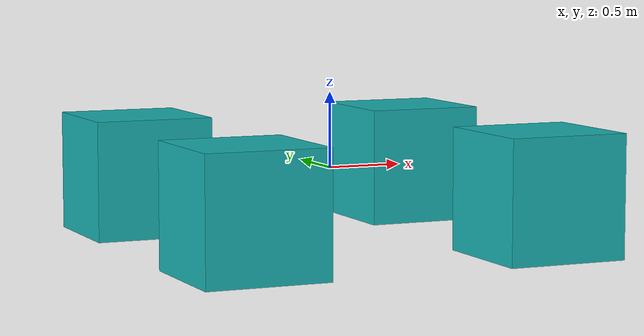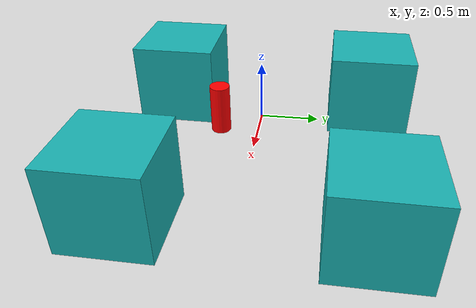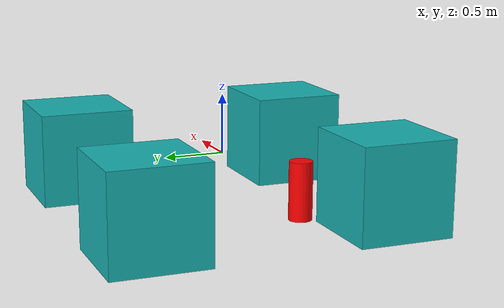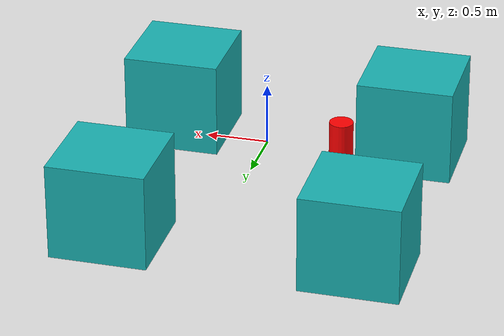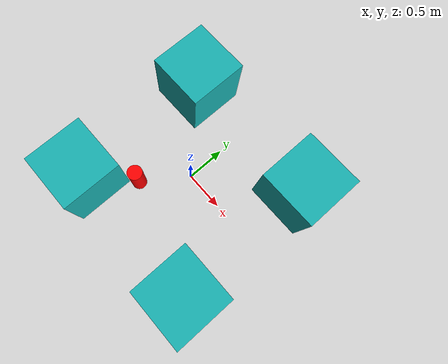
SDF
<?xml version='1.0'?>
<sdf version='1.6'>
  <model name='simple_map_feu'>
    <link name='link_0'>
      <pose frame=''>-1 1 0 0 -0 0</pose>
      <inertial>
        <mass>1</mass>
        <inertia>
          <ixx>0.166667</ixx>
          <ixy>0</ixy>
          <ixz>0</ixz>
          <iyy>0.166667</iyy>
          <iyz>0</iyz>
          <izz>0.166667</izz>
        </inertia>
        <pose frame=''>0 0 0 0 -0 0</pose>
      </inertial>
      <gravity>1</gravity>
      <self_collide>0</self_collide>
      <kinematic>0</kinematic>
      <visual name='visual'>
        <pose frame=''>0 0 -0.1 0 -0 0</pose>
        <geometry>
          <box>
            <size>0.8 0.8 0.8</size>
          </box>
        </geometry>
        <material>
          <lighting>1</lighting>
          <script>
            <uri>file://media/materials/scripts/gazebo.material</uri>
            <name>Gazebo/Grey</name>
          </script>
          <ambient>0.1 0.3 0.7 1</ambient>
          <diffuse>0.1 0.7 0.7 1</diffuse>
          <specular>0.1 0.01 0.7 1</specular>
          <emissive>0.1 0 0.7 1</emissive>
          <shader type='vertex'>
            <normal_map>__default__</normal_map>
          </shader>
        </material>
        <cast_shadows>1</cast_shadows>
        <transparency>0</transparency>
      </visual>
      <collision name='collision'>
        <laser_retro>0</laser_retro>
        <max_contacts>10</max_contacts>
        <pose frame=''>0 0 -0.1 0 -0 0</pose>
        <geometry>
          <box>
            <size>0.8 0.8 0.8</size>
          </box>
        </geometry>
        <surface>
          <friction>
            <ode>
              <mu>1</mu>
              <mu2>1</mu2>
              <fdir1>0 0 0</fdir1>
              <slip1>0</slip1>
              <slip2>0</slip2>
            </ode>
            <torsional>
              <coefficient>1</coefficient>
              <patch_radius>0</patch_radius>
              <surface_radius>0</surface_radius>
              <use_patch_radius>1</use_patch_radius>
              <ode>
                <slip>0</slip>
              </ode>
            </torsional>
          </friction>
          <bounce>
            <restitution_coefficient>0</restitution_coefficient>
            <threshold>1e+06</threshold>
          </bounce>
          <contact>
            <collide_without_contact>0</collide_without_contact>
            <collide_without_contact_bitmask>1</collide_without_contact_bitmask>
            <collide_bitmask>1</collide_bitmask>
            <ode>
              <soft_cfm>0</soft_cfm>
              <soft_erp>0.2</soft_erp>
              <kp>1e+13</kp>
              <kd>1</kd>
              <max_vel>0.01</max_vel>
              <min_depth>0</min_depth>
            </ode>
            <bullet>
              <split_impulse>1</split_impulse>
              <split_impulse_penetration_threshold>-0.01</split_impulse_penetration_threshold>
              <soft_cfm>0</soft_cfm>
              <soft_erp>0.2</soft_erp>
              <kp>1e+13</kp>
              <kd>1</kd>
            </bullet>
          </contact>
        </surface>
      </collision>
    </link>
    <link name='link_0_clone'>
      <pose frame=''>1 1 0 0 -0 0</pose>
      <inertial>
        <mass>1</mass>
        <inertia>
          <ixx>0.166667</ixx>
          <ixy>0</ixy>
          <ixz>0</ixz>
          <iyy>0.166667</iyy>
          <iyz>0</iyz>
          <izz>0.166667</izz>
        </inertia>
        <pose frame=''>0 0 0 0 -0 0</pose>
      </inertial>
      <self_collide>0</self_collide>
      <kinematic>0</kinematic>
      <visual name='visual'>
        <pose frame=''>0 0 -0.1 0 -0 0</pose>
        <geometry>
          <box>
            <size>0.8 0.8 0.8</size>
          </box>
        </geometry>
        <material>
          <lighting>1</lighting>
          <script>
            <uri>file://media/materials/scripts/gazebo.material</uri>
            <name>Gazebo/Grey</name>
          </script>
          <ambient>0.1 0.3 0.7 1</ambient>
          <diffuse>0.1 0.7 0.7 1</diffuse>
          <specular>0.1 0.01 0.7 1</specular>
          <emissive>0.1 0 0.7 1</emissive>
          <shader type='vertex'>
            <normal_map>__default__</normal_map>
          </shader>
        </material>
        <cast_shadows>1</cast_shadows>
        <transparency>0</transparency>
      </visual>
      <collision name='collision'>
        <laser_retro>0</laser_retro>
        <max_contacts>10</max_contacts>
        <pose frame=''>0 0 -0.1 0 -0 0</pose>
        <geometry>
          <box>
            <size>0.8 0.8 0.8</size>
          </box>
        </geometry>
        <surface>
          <friction>
            <ode>
              <mu>1</mu>
              <mu2>1</mu2>
              <fdir1>0 0 0</fdir1>
              <slip1>0</slip1>
              <slip2>0</slip2>
            </ode>
            <torsional>
              <coefficient>1</coefficient>
              <patch_radius>0</patch_radius>
              <surface_radius>0</surface_radius>
              <use_patch_radius>1</use_patch_radius>
              <ode>
                <slip>0</slip>
              </ode>
            </torsional>
          </friction>
          <bounce>
            <restitution_coefficient>0</restitution_coefficient>
            <threshold>1e+06</threshold>
          </bounce>
          <contact>
            <collide_without_contact>0</collide_without_contact>
            <collide_without_contact_bitmask>1</collide_without_contact_bitmask>
            <collide_bitmask>1</collide_bitmask>
            <ode>
              <soft_cfm>0</soft_cfm>
              <soft_erp>0.2</soft_erp>
              <kp>1e+13</kp>
              <kd>1</kd>
              <max_vel>0.01</max_vel>
              <min_depth>0</min_depth>
            </ode>
            <bullet>
              <split_impulse>1</split_impulse>
              <split_impulse_penetration_threshold>-0.01</split_impulse_penetration_threshold>
              <soft_cfm>0</soft_cfm>
              <soft_erp>0.2</soft_erp>
              <kp>1e+13</kp>
              <kd>1</kd>
            </bullet>
          </contact>
        </surface>
      </collision>
    </link>
    <link name='link_0_clone_0'>
      <pose frame=''>1 -1 0 0 -0 0</pose>
      <inertial>
        <mass>1</mass>
        <inertia>
          <ixx>0.166667</ixx>
          <ixy>0</ixy>
          <ixz>0</ixz>
          <iyy>0.166667</iyy>
          <iyz>0</iyz>
          <izz>0.166667</izz>
        </inertia>
        <pose frame=''>0 0 0 0 -0 0</pose>
      </inertial>
      <self_collide>0</self_collide>
      <kinematic>0</kinematic>
      <visual name='visual'>
        <pose frame=''>0 0 -0.1 0 -0 0</pose>
        <geometry>
          <box>
            <size>0.8 0.8 0.8</size>
          </box>
        </geometry>
        <material>
          <lighting>1</lighting>
          <script>
            <uri>file://media/materials/scripts/gazebo.material</uri>
            <name>Gazebo/Grey</name>
          </script>
          <ambient>0.1 0.3 0.7 1</ambient>
          <diffuse>0.1 0.7 0.7 1</diffuse>
          <specular>0.1 0.01 0.7 1</specular>
          <emissive>0.1 0 0.7 1</emissive>
          <shader type='vertex'>
            <normal_map>__default__</normal_map>
          </shader>
        </material>
        <cast_shadows>1</cast_shadows>
        <transparency>0</transparency>
      </visual>
      <collision name='collision'>
        <laser_retro>0</laser_retro>
        <max_contacts>10</max_contacts>
        <pose frame=''>0 0 -0.1 0 -0 0</pose>
        <geometry>
          <box>
            <size>0.8 0.8 0.8</size>
          </box>
        </geometry>
        <surface>
          <friction>
            <ode>
              <mu>1</mu>
              <mu2>1</mu2>
              <fdir1>0 0 0</fdir1>
              <slip1>0</slip1>
              <slip2>0</slip2>
            </ode>
            <torsional>
              <coefficient>1</coefficient>
              <patch_radius>0</patch_radius>
              <surface_radius>0</surface_radius>
              <use_patch_radius>1</use_patch_radius>
              <ode>
                <slip>0</slip>
              </ode>
            </torsional>
          </friction>
          <bounce>
            <restitution_coefficient>0</restitution_coefficient>
            <threshold>1e+06</threshold>
          </bounce>
          <contact>
            <collide_without_contact>0</collide_without_contact>
            <collide_without_contact_bitmask>1</collide_without_contact_bitmask>
            <collide_bitmask>1</collide_bitmask>
            <ode>
              <soft_cfm>0</soft_cfm>
              <soft_erp>0.2</soft_erp>
              <kp>1e+13</kp>
              <kd>1</kd>
              <max_vel>0.01</max_vel>
              <min_depth>0</min_depth>
            </ode>
            <bullet>
              <split_impulse>1</split_impulse>
              <split_impulse_penetration_threshold>-0.01</split_impulse_penetration_threshold>
              <soft_cfm>0</soft_cfm>
              <soft_erp>0.2</soft_erp>
              <kp>1e+13</kp>
              <kd>1</kd>
            </bullet>
          </contact>
        </surface>
      </collision>
    </link>
    <link name='link_0_clone_1'>
      <pose frame=''>-1 -1 0 0 -0 0</pose>
      <inertial>
        <mass>1</mass>
        <inertia>
          <ixx>0.166667</ixx>
          <ixy>0</ixy>
          <ixz>0</ixz>
          <iyy>0.166667</iyy>
          <iyz>0</iyz>
          <izz>0.166667</izz>
        </inertia>
        <pose frame=''>0 0 0 0 -0 0</pose>
      </inertial>
      <self_collide>0</self_collide>
      <kinematic>0</kinematic>
      <visual name='visual'>
        <pose frame=''>0 0 -0.1 0 -0 0</pose>
        <geometry>
          <box>
            <size>0.8 0.8 0.8</size>
          </box>
        </geometry>
        <material>
          <lighting>1</lighting>
          <script>
            <uri>file://media/materials/scripts/gazebo.material</uri>
            <name>Gazebo/Grey</name>
          </script>
          <ambient>0.1 0.3 0.7 1</ambient>
          <diffuse>0.1 0.7 0.7 1</diffuse>
          <specular>0.1 0.01 0.7 1</specular>
          <emissive>0.1 0 0.7 1</emissive>
          <shader type='vertex'>
            <normal_map>__default__</normal_map>
          </shader>
        </material>
        <cast_shadows>1</cast_shadows>
        <transparency>0</transparency>
      </visual>
      <collision name='collision'>
        <laser_retro>0</laser_retro>
        <max_contacts>10</max_contacts>
        <pose frame=''>0 0 -0.1 0 -0 0</pose>
        <geometry>
          <box>
            <size>0.8 0.8 0.8</size>
          </box>
        </geometry>
        <surface>
          <friction>
            <ode>
              <mu>1</mu>
              <mu2>1</mu2>
              <fdir1>0 0 0</fdir1>
              <slip1>0</slip1>
              <slip2>0</slip2>
            </ode>
            <torsional>
              <coefficient>1</coefficient>
              <patch_radius>0</patch_radius>
              <surface_radius>0</surface_radius>
              <use_patch_radius>1</use_patch_radius>
              <ode>
                <slip>0</slip>
              </ode>
            </torsional>
          </friction>
          <bounce>
            <restitution_coefficient>0</restitution_coefficient>
            <threshold>1e+06</threshold>
          </bounce>
          <contact>
            <collide_without_contact>0</collide_without_contact>
            <collide_without_contact_bitmask>1</collide_without_contact_bitmask>
            <collide_bitmask>1</collide_bitmask>
            <ode>
              <soft_cfm>0</soft_cfm>
              <soft_erp>0.2</soft_erp>
              <kp>1e+13</kp>
              <kd>1</kd>
              <max_vel>0.01</max_vel>
              <min_depth>0</min_depth>
            </ode>
            <bullet>
              <split_impulse>1</split_impulse>
              <split_impulse_penetration_threshold>-0.01</split_impulse_penetration_threshold>
              <soft_cfm>0</soft_cfm>
              <soft_erp>0.2</soft_erp>
              <kp>1e+13</kp>
              <kd>1</kd>
            </bullet>
          </contact>
        </surface>
      </collision>
    </link>
    <link name='link_1'>
      <pose frame=''>0 0 0 0 -0 0</pose>
      <inertial>
        <mass>1</mass>
        <inertia>
          <ixx>0.145833</ixx>
          <ixy>0</ixy>
          <ixz>0</ixz>
          <iyy>0.145833</iyy>
          <iyz>0</iyz>
          <izz>0.125</izz>
        </inertia>
        <pose frame=''>0 0 0 0 -0 0</pose>
      </inertial>
      <gravity>0</gravity>
      <self_collide>0</self_collide>
      <kinematic>0</kinematic>
      <visual name='visual'>
        <pose frame=''>-0.5 -0.5 -0.25 0 -0 0</pose>
        <geometry>
          <cylinder>
            <radius>0.1</radius>
            <length>0.5</length>
          </cylinder>
        </geometry>
        <material>
          <lighting>1</lighting>
          <script>
            <uri>file://media/materials/scripts/gazebo.material</uri>
            <name>Gazebo/Grey</name>
          </script>
          <ambient>1 0 0 1</ambient>
          <diffuse>1 0 0 1</diffuse>
          <specular>1 0 0 1</specular>
          <emissive>1 0 0 1</emissive>
          <shader type='vertex'>
            <normal_map>__default__</normal_map>
          </shader>
        </material>
        <cast_shadows>1</cast_shadows>
        <transparency>0</transparency>
      </visual>
      <collision name='collision'>
        <laser_retro>0</laser_retro>
        <max_contacts>10</max_contacts>
        <pose frame=''>-0.5 -0.5 -0.25 0 -0 0</pose>
        <geometry>
          <cylinder>
            <radius>0.1</radius>
            <length>0.5</length>
          </cylinder>
        </geometry>
        <surface>
          <friction>
            <ode>
              <mu>1</mu>
              <mu2>1</mu2>
              <fdir1>0 0 0</fdir1>
              <slip1>0</slip1>
              <slip2>0</slip2>
            </ode>
            <torsional>
              <coefficient>1</coefficient>
              <patch_radius>0</patch_radius>
              <surface_radius>0</surface_radius>
              <use_patch_radius>1</use_patch_radius>
              <ode>
                <slip>0</slip>
              </ode>
            </torsional>
          </friction>
          <bounce>
            <restitution_coefficient>0</restitution_coefficient>
            <threshold>1e+06</threshold>
          </bounce>
          <contact>
            <collide_without_contact>0</collide_without_contact>
            <collide_without_contact_bitmask>1</collide_without_contact_bitmask>
            <collide_bitmask>1</collide_bitmask>
            <ode>
              <soft_cfm>0</soft_cfm>
              <soft_erp>0.2</soft_erp>
              <kp>1e+13</kp>
              <kd>1</kd>
              <max_vel>0.01</max_vel>
              <min_depth>0</min_depth>
            </ode>
            <bullet>
              <split_impulse>1</split_impulse>
              <split_impulse_penetration_threshold>-0.01</split_impulse_penetration_threshold>
              <soft_cfm>0</soft_cfm>
              <soft_erp>0.2</soft_erp>
              <kp>1e+13</kp>
              <kd>1</kd>
            </bullet>
          </contact>
        </surface>
      </collision>
    </link>
    <static>0</static>
    <allow_auto_disable>1</allow_auto_disable>
  </model>
</sdf>
